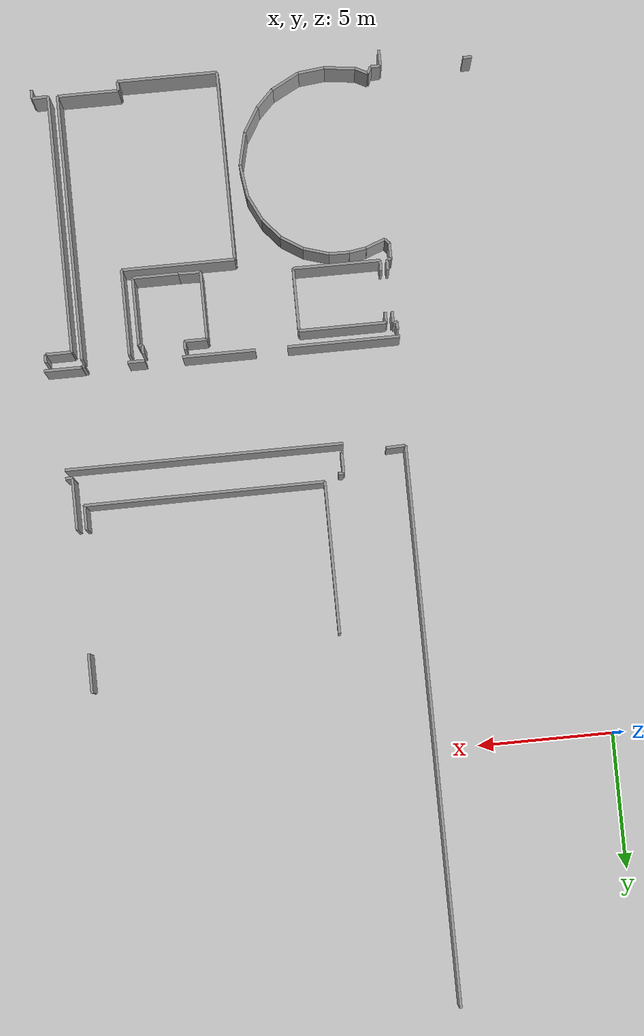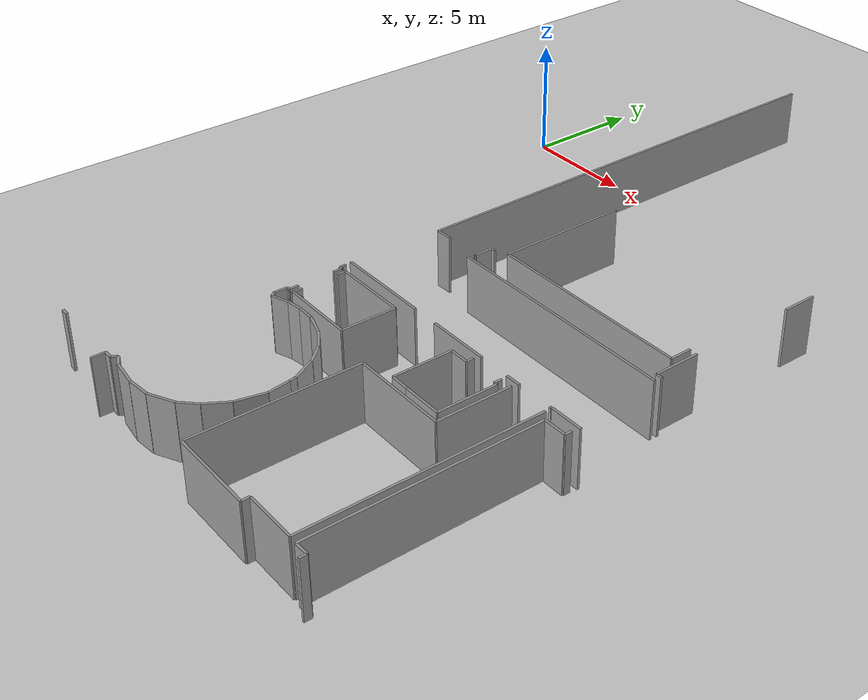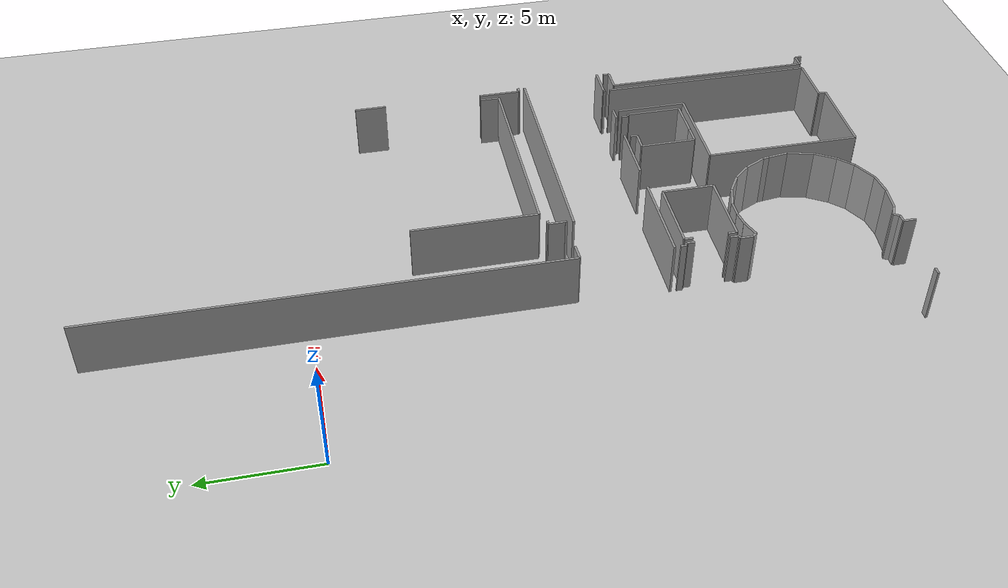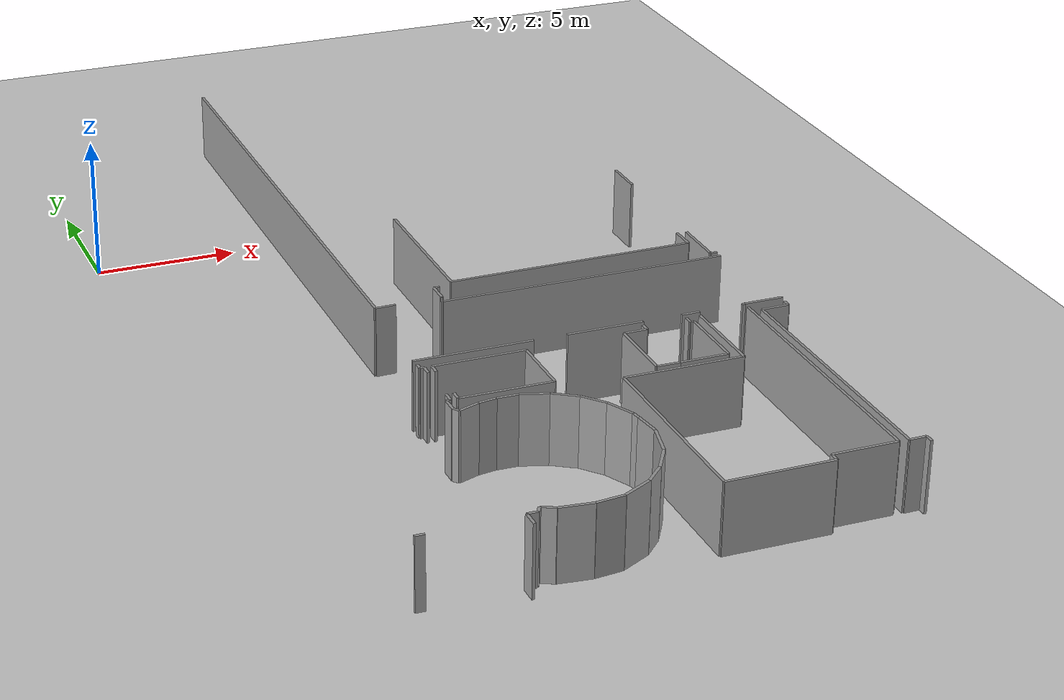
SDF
<sdf version="1.6">
 <world name="default">
  <model name="ground_plane">
   <static>1</static>
   <link name="link">
    <collision name="collision">
     <geometry><plane><normal>0 0 1</normal><size>100 100</size></plane></geometry>
     <surface><friction><ode><mu>100</mu><mu2>50</mu2></ode></friction></surface>
    </collision>
    <visual name="visual">
     <cast_shadows>0</cast_shadows>
     <geometry><plane><normal>0 0 1</normal><size>100 100</size></plane></geometry>
     <material>
      <script><uri>file://media/materials/scripts/gazebo.material</uri><name>Gazebo/Grey</name></script>
     </material>
    </visual>
   </link>
  </model>
  <model name="50045367">
   <static>1</static>
   <link name="Wall_126">
    <collision name="Wall_126_Collision">
     <geometry><box><size>20.4384115046 0.1 2.5</size></box></geometry>
     <pose>10.2192057523 0 1.25 0 0 0</pose>
    </collision>
    <visual name="Wall_126_Visual">
     <pose>10.2192057523 0 1.25 0 0 0</pose>
     <geometry><box><size>20.4384115046 0.1 2.5</size></box></geometry>
     <material>
      <script><uri>file://media/materials/scripts/gazebo.material</uri><name>Gazebo/Grey</name></script>
      <ambient>1 1 1 1</ambient>
     </material>
    </visual>
    <pose>59.8363737995 -36.7291274963 0 0 0 1.57079632679</pose>
   </link>
   <link name="Wall_131">
    <collision name="Wall_131_Collision">
     <geometry><box><size>0.195385944408 0.1 2.5</size></box></geometry>
     <pose>0.0976929722039 0 1.25 0 0 0</pose>
    </collision>
    <visual name="Wall_131_Visual">
     <pose>0.0976929722039 0 1.25 0 0 0</pose>
     <geometry><box><size>0.195385944408 0.1 2.5</size></box></geometry>
     <material>
      <script><uri>file://media/materials/scripts/gazebo.material</uri><name>Gazebo/Grey</name></script>
      <ambient>1 1 1 1</ambient>
     </material>
    </visual>
    <pose>62.3714365567 -35.9397073022 0 0 0 3.14159265359</pose>
   </link>
   <link name="Wall_132">
    <collision name="Wall_132_Collision">
     <geometry><box><size>0.768966919051 0.1 2.5</size></box></geometry>
     <pose>0.384483459525 0 1.25 0 0 0</pose>
    </collision>
    <visual name="Wall_132_Visual">
     <pose>0.384483459525 0 1.25 0 0 0</pose>
     <geometry><box><size>0.768966919051 0.1 2.5</size></box></geometry>
     <material>
      <script><uri>file://media/materials/scripts/gazebo.material</uri><name>Gazebo/Grey</name></script>
      <ambient>1 1 1 1</ambient>
     </material>
    </visual>
    <pose>62.1760506123 -35.9397073022 0 0 0 -1.57079632679</pose>
   </link>
   <link name="Wall_133">
    <collision name="Wall_133_Collision">
     <geometry><box><size>0.0572945779765 0.1 2.5</size></box></geometry>
     <pose>0.0286472889883 0 1.25 0 0 0</pose>
    </collision>
    <visual name="Wall_133_Visual">
     <pose>0.0286472889883 0 1.25 0 0 0</pose>
     <geometry><box><size>0.0572945779765 0.1 2.5</size></box></geometry>
     <material>
      <script><uri>file://media/materials/scripts/gazebo.material</uri><name>Gazebo/Grey</name></script>
      <ambient>1 1 1 1</ambient>
     </material>
    </visual>
    <pose>62.1760506123 -36.7086742213 0 0 0 3.14159265359</pose>
   </link>
   <link name="Wall_134">
    <collision name="Wall_134_Collision">
     <geometry><box><size>0.714759899718 0.1 2.5</size></box></geometry>
     <pose>0.357379949859 0 1.25 0 0 0</pose>
    </collision>
    <visual name="Wall_134_Visual">
     <pose>0.357379949859 0 1.25 0 0 0</pose>
     <geometry><box><size>0.714759899718 0.1 2.5</size></box></geometry>
     <material>
      <script><uri>file://media/materials/scripts/gazebo.material</uri><name>Gazebo/Grey</name></script>
      <ambient>1 1 1 1</ambient>
     </material>
    </visual>
    <pose>60.550840998 -36.7086742213 0 0 0 -3.11297315847</pose>
   </link>
   <link name="Wall_260">
    <collision name="Wall_260_Collision">
     <geometry><box><size>5.54830021851 0.1 2.5</size></box></geometry>
     <pose>2.77415010925 0 1.25 0 0 0</pose>
    </collision>
    <visual name="Wall_260_Visual">
     <pose>2.77415010925 0 1.25 0 0 0</pose>
     <geometry><box><size>5.54830021851 0.1 2.5</size></box></geometry>
     <material>
      <script><uri>file://media/materials/scripts/gazebo.material</uri><name>Gazebo/Grey</name></script>
      <ambient>1 1 1 1</ambient>
     </material>
    </visual>
    <pose>62.8842929011 -35.6961735861 0 0 0 1.57079632679</pose>
   </link>
   <link name="Wall_263">
    <collision name="Wall_263_Collision">
     <geometry><box><size>0.887748361197 0.1 2.5</size></box></geometry>
     <pose>0.443874180599 0 1.25 0 0 0</pose>
    </collision>
    <visual name="Wall_263_Visual">
     <pose>0.443874180599 0 1.25 0 0 0</pose>
     <geometry><box><size>0.887748361197 0.1 2.5</size></box></geometry>
     <material>
      <script><uri>file://media/materials/scripts/gazebo.material</uri><name>Gazebo/Grey</name></script>
      <ambient>1 1 1 1</ambient>
     </material>
    </visual>
    <pose>71.6666243203 -34.7795873774 0 0 0 -1.57079632679</pose>
   </link>
   <link name="Wall_264">
    <collision name="Wall_264_Collision">
     <geometry><box><size>8.78237876543 0.1 2.5</size></box></geometry>
     <pose>4.39118938272 0 1.25 0 0 0</pose>
    </collision>
    <visual name="Wall_264_Visual">
     <pose>4.39118938272 0 1.25 0 0 0</pose>
     <geometry><box><size>8.78237876543 0.1 2.5</size></box></geometry>
     <material>
      <script><uri>file://media/materials/scripts/gazebo.material</uri><name>Gazebo/Grey</name></script>
      <ambient>1 1 1 1</ambient>
     </material>
    </visual>
    <pose>71.6666243203 -35.6673357386 0 0 0 -3.13830904444</pose>
   </link>
   <link name="Wall_265">
    <collision name="Wall_265_Collision">
     <geometry><box><size>1.8627724986 0.1 2.5</size></box></geometry>
     <pose>0.931386249301 0 1.25 0 0 0</pose>
    </collision>
    <visual name="Wall_265_Visual">
     <pose>0.931386249301 0 1.25 0 0 0</pose>
     <geometry><box><size>1.8627724986 0.1 2.5</size></box></geometry>
     <material>
      <script><uri>file://media/materials/scripts/gazebo.material</uri><name>Gazebo/Grey</name></script>
      <ambient>1 1 1 1</ambient>
     </material>
    </visual>
    <pose>72.0100106713 -36.6696732558 0 0 0 1.57079632679</pose>
   </link>
   <link name="Wall_266">
    <collision name="Wall_266_Collision">
     <geometry><box><size>1.42766400732 0.1 2.5</size></box></geometry>
     <pose>0.713832003659 0 1.25 0 0 0</pose>
    </collision>
    <visual name="Wall_266_Visual">
     <pose>0.713832003659 0 1.25 0 0 0</pose>
     <geometry><box><size>1.42766400732 0.1 2.5</size></box></geometry>
     <material>
      <script><uri>file://media/materials/scripts/gazebo.material</uri><name>Gazebo/Grey</name></script>
      <ambient>1 1 1 1</ambient>
     </material>
    </visual>
    <pose>72.0100106713 -30.29638193 0 0 0 1.57079632679</pose>
   </link>
   <link name="Wall_299">
    <collision name="Wall_299_Collision">
     <geometry><box><size>0.252680522384 0.1 2.5</size></box></geometry>
     <pose>0.126340261192 0 1.25 0 0 0</pose>
    </collision>
    <visual name="Wall_299_Visual">
     <pose>0.126340261192 0 1.25 0 0 0</pose>
     <geometry><box><size>0.252680522384 0.1 2.5</size></box></geometry>
     <material>
      <script><uri>file://media/materials/scripts/gazebo.material</uri><name>Gazebo/Grey</name></script>
      <ambient>1 1 1 1</ambient>
     </material>
    </visual>
    <pose>72.2604044921 -36.7107068449 0 0 0 3.14159265359</pose>
   </link>
   <link name="Wall_300">
    <collision name="Wall_300_Collision">
     <geometry><box><size>0.0410972558558 0.1 2.5</size></box></geometry>
     <pose>0.0205486279279 0 1.25 0 0 0</pose>
    </collision>
    <visual name="Wall_300_Visual">
     <pose>0.0205486279279 0 1.25 0 0 0</pose>
     <geometry><box><size>0.0410972558558 0.1 2.5</size></box></geometry>
     <material>
      <script><uri>file://media/materials/scripts/gazebo.material</uri><name>Gazebo/Grey</name></script>
      <ambient>1 1 1 1</ambient>
     </material>
    </visual>
    <pose>72.0077239697 -36.7107068449 0 0 0 1.51512635379</pose>
   </link>
   <link name="Wall_376">
    <collision name="Wall_376_Collision">
     <geometry><box><size>0.260429899893 0.1 2.5</size></box></geometry>
     <pose>0.130214949947 0 1.25 0 0 0</pose>
    </collision>
    <visual name="Wall_376_Visual">
     <pose>0.130214949947 0 1.25 0 0 0</pose>
     <geometry><box><size>0.260429899893 0.1 2.5</size></box></geometry>
     <material>
      <script><uri>file://media/materials/scripts/gazebo.material</uri><name>Gazebo/Grey</name></script>
      <ambient>1 1 1 1</ambient>
     </material>
    </visual>
    <pose>59.7103511357 -40.9915392042 0 0 0 -1.57079632679</pose>
   </link>
   <link name="Wall_377">
    <collision name="Wall_377_Collision">
     <geometry><box><size>0.138853600285 0.1 2.5</size></box></geometry>
     <pose>0.0694268001423 0 1.25 0 0 0</pose>
    </collision>
    <visual name="Wall_377_Visual">
     <pose>0.0694268001423 0 1.25 0 0 0</pose>
     <geometry><box><size>0.138853600285 0.1 2.5</size></box></geometry>
     <material>
      <script><uri>file://media/materials/scripts/gazebo.material</uri><name>Gazebo/Grey</name></script>
      <ambient>1 1 1 1</ambient>
     </material>
    </visual>
    <pose>59.7103511357 -41.2519691041 0 0 0 0.0</pose>
   </link>
   <link name="Wall_378">
    <collision name="Wall_378_Collision">
     <geometry><box><size>0.391661161644 0.1 2.5</size></box></geometry>
     <pose>0.195830580822 0 1.25 0 0 0</pose>
    </collision>
    <visual name="Wall_378_Visual">
     <pose>0.195830580822 0 1.25 0 0 0</pose>
     <geometry><box><size>0.391661161644 0.1 2.5</size></box></geometry>
     <material>
      <script><uri>file://media/materials/scripts/gazebo.material</uri><name>Gazebo/Grey</name></script>
      <ambient>1 1 1 1</ambient>
     </material>
    </visual>
    <pose>59.849204736 -41.2519691041 0 0 0 -1.57079632679</pose>
   </link>
   <link name="Wall_379">
    <collision name="Wall_379_Collision">
     <geometry><box><size>0.382006199502 0.1 2.5</size></box></geometry>
     <pose>0.191003099751 0 1.25 0 0 0</pose>
    </collision>
    <visual name="Wall_379_Visual">
     <pose>0.191003099751 0 1.25 0 0 0</pose>
     <geometry><box><size>0.382006199502 0.1 2.5</size></box></geometry>
     <material>
      <script><uri>file://media/materials/scripts/gazebo.material</uri><name>Gazebo/Grey</name></script>
      <ambient>1 1 1 1</ambient>
     </material>
    </visual>
    <pose>59.849204736 -43.1851211952 0 0 0 -1.57079632679</pose>
   </link>
   <link name="Wall_380">
    <collision name="Wall_380_Collision">
     <geometry><box><size>0.141394379796 0.1 2.5</size></box></geometry>
     <pose>0.0706971898979 0 1.25 0 0 0</pose>
    </collision>
    <visual name="Wall_380_Visual">
     <pose>0.0706971898979 0 1.25 0 0 0</pose>
     <geometry><box><size>0.141394379796 0.1 2.5</size></box></geometry>
     <material>
      <script><uri>file://media/materials/scripts/gazebo.material</uri><name>Gazebo/Grey</name></script>
      <ambient>1 1 1 1</ambient>
     </material>
    </visual>
    <pose>59.849204736 -43.5671273947 0 0 0 3.14159265359</pose>
   </link>
   <link name="Wall_381">
    <collision name="Wall_381_Collision">
     <geometry><box><size>0.571294273083 0.1 2.5</size></box></geometry>
     <pose>0.285647136541 0 1.25 0 0 0</pose>
    </collision>
    <visual name="Wall_381_Visual">
     <pose>0.285647136541 0 1.25 0 0 0</pose>
     <geometry><box><size>0.571294273083 0.1 2.5</size></box></geometry>
     <material>
      <script><uri>file://media/materials/scripts/gazebo.material</uri><name>Gazebo/Grey</name></script>
      <ambient>1 1 1 1</ambient>
     </material>
    </visual>
    <pose>59.7078103562 -43.5671273947 0 0 0 -1.57079632679</pose>
   </link>
   <link name="Wall_382">
    <collision name="Wall_382_Collision">
     <geometry><box><size>0.230533495433 0.1 2.5</size></box></geometry>
     <pose>0.115266747716 0 1.25 0 0 0</pose>
    </collision>
    <visual name="Wall_382_Visual">
     <pose>0.115266747716 0 1.25 0 0 0</pose>
     <geometry><box><size>0.230533495433 0.1 2.5</size></box></geometry>
     <material>
      <script><uri>file://media/materials/scripts/gazebo.material</uri><name>Gazebo/Grey</name></script>
      <ambient>1 1 1 1</ambient>
     </material>
    </visual>
    <pose>59.7078103562 -44.1384216678 0 0 0 -0.875140813856</pose>
   </link>
   <link name="Wall_383">
    <collision name="Wall_383_Collision">
     <geometry><box><size>0.759257925694 0.1 2.5</size></box></geometry>
     <pose>0.379628962847 0 1.25 0 0 0</pose>
    </collision>
    <visual name="Wall_383_Visual">
     <pose>0.379628962847 0 1.25 0 0 0</pose>
     <geometry><box><size>0.759257925694 0.1 2.5</size></box></geometry>
     <material>
      <script><uri>file://media/materials/scripts/gazebo.material</uri><name>Gazebo/Grey</name></script>
      <ambient>1 1 1 1</ambient>
     </material>
    </visual>
    <pose>59.8555566848 -44.3153869607 0 0 0 0.348156314008</pose>
   </link>
   <link name="Wall_384">
    <collision name="Wall_384_Collision">
     <geometry><box><size>0.632427019998 0.1 2.5</size></box></geometry>
     <pose>0.316213509999 0 1.25 0 0 0</pose>
    </collision>
    <visual name="Wall_384_Visual">
     <pose>0.316213509999 0 1.25 0 0 0</pose>
     <geometry><box><size>0.632427019998 0.1 2.5</size></box></geometry>
     <material>
      <script><uri>file://media/materials/scripts/gazebo.material</uri><name>Gazebo/Grey</name></script>
      <ambient>1 1 1 1</ambient>
     </material>
    </visual>
    <pose>60.5692616495 -44.0563544896 0 0 0 0.150419575531</pose>
   </link>
   <link name="Wall_385">
    <collision name="Wall_385_Collision">
     <geometry><box><size>0.732870926682 0.1 2.5</size></box></geometry>
     <pose>0.366435463341 0 1.25 0 0 0</pose>
    </collision>
    <visual name="Wall_385_Visual">
     <pose>0.366435463341 0 1.25 0 0 0</pose>
     <geometry><box><size>0.732870926682 0.1 2.5</size></box></geometry>
     <material>
      <script><uri>file://media/materials/scripts/gazebo.material</uri><name>Gazebo/Grey</name></script>
      <ambient>1 1 1 1</ambient>
     </material>
    </visual>
    <pose>61.1945474872 -43.9615834138 0 0 0 -0.0173352952006</pose>
   </link>
   <link name="Wall_386">
    <collision name="Wall_386_Collision">
     <geometry><box><size>0.964850213878 0.1 2.5</size></box></geometry>
     <pose>0.482425106939 0 1.25 0 0 0</pose>
    </collision>
    <visual name="Wall_386_Visual">
     <pose>0.482425106939 0 1.25 0 0 0</pose>
     <geometry><box><size>0.964850213878 0.1 2.5</size></box></geometry>
     <material>
      <script><uri>file://media/materials/scripts/gazebo.material</uri><name>Gazebo/Grey</name></script>
      <ambient>1 1 1 1</ambient>
     </material>
    </visual>
    <pose>61.9273082982 -43.9742873113 0 0 0 -0.29897326893</pose>
   </link>
   <link name="Wall_387">
    <collision name="Wall_387_Collision">
     <geometry><box><size>0.925259919196 0.1 2.5</size></box></geometry>
     <pose>0.462629959598 0 1.25 0 0 0</pose>
    </collision>
    <visual name="Wall_387_Visual">
     <pose>0.462629959598 0 1.25 0 0 0</pose>
     <geometry><box><size>0.925259919196 0.1 2.5</size></box></geometry>
     <material>
      <script><uri>file://media/materials/scripts/gazebo.material</uri><name>Gazebo/Grey</name></script>
      <ambient>1 1 1 1</ambient>
     </material>
    </visual>
    <pose>62.8493571828 -44.2584734997 0 0 0 -0.56149553778</pose>
   </link>
   <link name="Wall_388">
    <collision name="Wall_388_Collision">
     <geometry><box><size>0.913283336655 0.1 2.5</size></box></geometry>
     <pose>0.456641668327 0 1.25 0 0 0</pose>
    </collision>
    <visual name="Wall_388_Visual">
     <pose>0.456641668327 0 1.25 0 0 0</pose>
     <geometry><box><size>0.913283336655 0.1 2.5</size></box></geometry>
     <material>
      <script><uri>file://media/materials/scripts/gazebo.material</uri><name>Gazebo/Grey</name></script>
      <ambient>1 1 1 1</ambient>
     </material>
    </visual>
    <pose>63.6325524671 -44.7511306469 0 0 0 -0.853811391816</pose>
   </link>
   <link name="Wall_389">
    <collision name="Wall_389_Collision">
     <geometry><box><size>1.00838815135 0.1 2.5</size></box></geometry>
     <pose>0.504194075677 0 1.25 0 0 0</pose>
    </collision>
    <visual name="Wall_389_Visual">
     <pose>0.504194075677 0 1.25 0 0 0</pose>
     <geometry><box><size>1.00838815135 0.1 2.5</size></box></geometry>
     <material>
      <script><uri>file://media/materials/scripts/gazebo.material</uri><name>Gazebo/Grey</name></script>
      <ambient>1 1 1 1</ambient>
     </material>
    </visual>
    <pose>64.2326845876 -45.4395548554 0 0 0 -1.11007845193</pose>
   </link>
   <link name="Wall_390">
    <collision name="Wall_390_Collision">
     <geometry><box><size>0.288649018977 0.1 2.5</size></box></geometry>
     <pose>0.144324509489 0 1.25 0 0 0</pose>
    </collision>
    <visual name="Wall_390_Visual">
     <pose>0.144324509489 0 1.25 0 0 0</pose>
     <geometry><box><size>0.288649018977 0.1 2.5</size></box></geometry>
     <material>
      <script><uri>file://media/materials/scripts/gazebo.material</uri><name>Gazebo/Grey</name></script>
      <ambient>1 1 1 1</ambient>
     </material>
    </visual>
    <pose>64.6810051324 -46.3428019716 0 0 0 -1.39472189022</pose>
   </link>
   <link name="Wall_391">
    <collision name="Wall_391_Collision">
     <geometry><box><size>0.917343947482 0.1 2.5</size></box></geometry>
     <pose>0.458671973741 0 1.25 0 0 0</pose>
    </collision>
    <visual name="Wall_391_Visual">
     <pose>0.458671973741 0 1.25 0 0 0</pose>
     <geometry><box><size>0.917343947482 0.1 2.5</size></box></geometry>
     <material>
      <script><uri>file://media/materials/scripts/gazebo.material</uri><name>Gazebo/Grey</name></script>
      <ambient>1 1 1 1</ambient>
     </material>
    </visual>
    <pose>64.7315666446 -46.62698816 0 0 0 -1.4375950458</pose>
   </link>
   <link name="Wall_392">
    <collision name="Wall_392_Collision">
     <geometry><box><size>1.20171081766 0.1 2.5</size></box></geometry>
     <pose>0.600855408831 0 1.25 0 0 0</pose>
    </collision>
    <visual name="Wall_392_Visual">
     <pose>0.600855408831 0 1.25 0 0 0</pose>
     <geometry><box><size>1.20171081766 0.1 2.5</size></box></geometry>
     <material>
      <script><uri>file://media/materials/scripts/gazebo.material</uri><name>Gazebo/Grey</name></script>
      <ambient>1 1 1 1</ambient>
     </material>
    </visual>
    <pose>64.8533970222 -47.536206108 0 0 0 -1.80551893928</pose>
   </link>
   <link name="Wall_393">
    <collision name="Wall_393_Collision">
     <geometry><box><size>1.04365437261 0.1 2.5</size></box></geometry>
     <pose>0.521827186304 0 1.25 0 0 0</pose>
    </collision>
    <visual name="Wall_393_Visual">
     <pose>0.521827186304 0 1.25 0 0 0</pose>
     <geometry><box><size>1.04365437261 0.1 2.5</size></box></geometry>
     <material>
      <script><uri>file://media/materials/scripts/gazebo.material</uri><name>Gazebo/Grey</name></script>
      <ambient>1 1 1 1</ambient>
     </material>
    </visual>
    <pose>64.573911276 -48.7049646832 0 0 0 -2.12165386133</pose>
   </link>
   <link name="Wall_394">
    <collision name="Wall_394_Collision">
     <geometry><box><size>0.844403138263 0.1 2.5</size></box></geometry>
     <pose>0.422201569132 0 1.25 0 0 0</pose>
    </collision>
    <visual name="Wall_394_Visual">
     <pose>0.422201569132 0 1.25 0 0 0</pose>
     <geometry><box><size>0.844403138263 0.1 2.5</size></box></geometry>
     <material>
      <script><uri>file://media/materials/scripts/gazebo.material</uri><name>Gazebo/Grey</name></script>
      <ambient>1 1 1 1</ambient>
     </material>
    </visual>
    <pose>64.0276436811 -49.5942375121 0 0 0 -2.35619449019</pose>
   </link>
   <link name="Wall_395">
    <collision name="Wall_395_Collision">
     <geometry><box><size>1.13071825042 0.1 2.5</size></box></geometry>
     <pose>0.565359125211 0 1.25 0 0 0</pose>
    </collision>
    <visual name="Wall_395_Visual">
     <pose>0.565359125211 0 1.25 0 0 0</pose>
     <geometry><box><size>1.13071825042 0.1 2.5</size></box></geometry>
     <material>
      <script><uri>file://media/materials/scripts/gazebo.material</uri><name>Gazebo/Grey</name></script>
      <ambient>1 1 1 1</ambient>
     </material>
    </visual>
    <pose>63.430560496 -50.1913206972 0 0 0 -2.66287080959</pose>
   </link>
   <link name="Wall_396">
    <collision name="Wall_396_Collision">
     <geometry><box><size>0.970830488061 0.1 2.5</size></box></geometry>
     <pose>0.48541524403 0 1.25 0 0 0</pose>
    </collision>
    <visual name="Wall_396_Visual">
     <pose>0.48541524403 0 1.25 0 0 0</pose>
     <geometry><box><size>0.970830488061 0.1 2.5</size></box></geometry>
     <material>
      <script><uri>file://media/materials/scripts/gazebo.material</uri><name>Gazebo/Grey</name></script>
      <ambient>1 1 1 1</ambient>
     </material>
    </visual>
    <pose>62.4269525891 -50.712180497 0 0 0 -3.03671571486</pose>
   </link>
   <link name="Wall_397">
    <collision name="Wall_397_Collision">
     <geometry><box><size>1.13776151901 0.1 2.5</size></box></geometry>
     <pose>0.568880759504 0 1.25 0 0 0</pose>
    </collision>
    <visual name="Wall_397_Visual">
     <pose>0.568880759504 0 1.25 0 0 0</pose>
     <geometry><box><size>1.13776151901 0.1 2.5</size></box></geometry>
     <material>
      <script><uri>file://media/materials/scripts/gazebo.material</uri><name>Gazebo/Grey</name></script>
      <ambient>1 1 1 1</ambient>
     </material>
    </visual>
    <pose>61.4614563748 -50.8138116774 0 0 0 3.02970238742</pose>
   </link>
   <link name="Wall_398">
    <collision name="Wall_398_Collision">
     <geometry><box><size>0.499991581233 0.1 2.5</size></box></geometry>
     <pose>0.249995790616 0 1.25 0 0 0</pose>
    </collision>
    <visual name="Wall_398_Visual">
     <pose>0.249995790616 0 1.25 0 0 0</pose>
     <geometry><box><size>0.499991581233 0.1 2.5</size></box></geometry>
     <material>
      <script><uri>file://media/materials/scripts/gazebo.material</uri><name>Gazebo/Grey</name></script>
      <ambient>1 1 1 1</ambient>
     </material>
    </visual>
    <pose>60.3308094924 -50.6867727019 0 0 0 2.66658189732</pose>
   </link>
   <link name="Wall_399">
    <collision name="Wall_399_Collision">
     <geometry><box><size>0.268637453986 0.1 2.5</size></box></geometry>
     <pose>0.134318726993 0 1.25 0 0 0</pose>
    </collision>
    <visual name="Wall_399_Visual">
     <pose>0.134318726993 0 1.25 0 0 0</pose>
     <geometry><box><size>0.268637453986 0.1 2.5</size></box></geometry>
     <material>
      <script><uri>file://media/materials/scripts/gazebo.material</uri><name>Gazebo/Grey</name></script>
      <ambient>1 1 1 1</ambient>
     </material>
    </visual>
    <pose>59.8861730779 -50.4581025459 0 0 0 -2.08225840645</pose>
   </link>
   <link name="Wall_400">
    <collision name="Wall_400_Collision">
     <geometry><box><size>0.353422430002 0.1 2.5</size></box></geometry>
     <pose>0.176711215001 0 1.25 0 0 0</pose>
    </collision>
    <visual name="Wall_400_Visual">
     <pose>0.176711215001 0 1.25 0 0 0</pose>
     <geometry><box><size>0.353422430002 0.1 2.5</size></box></geometry>
     <material>
      <script><uri>file://media/materials/scripts/gazebo.material</uri><name>Gazebo/Grey</name></script>
      <ambient>1 1 1 1</ambient>
     </material>
    </visual>
    <pose>59.7546877382 -50.6923624168 0 0 0 3.14159265359</pose>
   </link>
   <link name="Wall_401">
    <collision name="Wall_401_Collision">
     <geometry><box><size>0.577011026983 0.1 2.5</size></box></geometry>
     <pose>0.288505513492 0 1.25 0 0 0</pose>
    </collision>
    <visual name="Wall_401_Visual">
     <pose>0.288505513492 0 1.25 0 0 0</pose>
     <geometry><box><size>0.577011026983 0.1 2.5</size></box></geometry>
     <material>
      <script><uri>file://media/materials/scripts/gazebo.material</uri><name>Gazebo/Grey</name></script>
      <ambient>1 1 1 1</ambient>
     </material>
    </visual>
    <pose>59.4012653082 -50.6923624168 0 0 0 -1.57079632679</pose>
   </link>
   <link name="Wall_403">
    <collision name="Wall_403_Collision">
     <geometry><box><size>0.320178545699 0.1 2.5</size></box></geometry>
     <pose>0.160089272849 0 1.25 0 0 0</pose>
    </collision>
    <visual name="Wall_403_Visual">
     <pose>0.160089272849 0 1.25 0 0 0</pose>
     <geometry><box><size>0.320178545699 0.1 2.5</size></box></geometry>
     <material>
      <script><uri>file://media/materials/scripts/gazebo.material</uri><name>Gazebo/Grey</name></script>
      <ambient>1 1 1 1</ambient>
     </material>
    </visual>
    <pose>56.3590629605 -50.7060826261 0 0 0 3.1257209706</pose>
   </link>
   <link name="Wall_404">
    <collision name="Wall_404_Collision">
     <geometry><box><size>0.375527211749 0.1 2.5</size></box></geometry>
     <pose>0.187763605874 0 1.25 0 0 0</pose>
    </collision>
    <visual name="Wall_404_Visual">
     <pose>0.187763605874 0 1.25 0 0 0</pose>
     <geometry><box><size>0.375527211749 0.1 2.5</size></box></geometry>
     <material>
      <script><uri>file://media/materials/scripts/gazebo.material</uri><name>Gazebo/Grey</name></script>
      <ambient>1 1 1 1</ambient>
     </material>
    </visual>
    <pose>60.1016311804 -43.5587428223 0 0 0 1.57079632679</pose>
   </link>
   <link name="Wall_405">
    <collision name="Wall_405_Collision">
     <geometry><box><size>0.377305757406 0.1 2.5</size></box></geometry>
     <pose>0.188652878703 0 1.25 0 0 0</pose>
    </collision>
    <visual name="Wall_405_Visual">
     <pose>0.188652878703 0 1.25 0 0 0</pose>
     <geometry><box><size>0.377305757406 0.1 2.5</size></box></geometry>
     <material>
      <script><uri>file://media/materials/scripts/gazebo.material</uri><name>Gazebo/Grey</name></script>
      <ambient>1 1 1 1</ambient>
     </material>
    </visual>
    <pose>60.1016311804 -41.6469332791 0 0 0 1.57079632679</pose>
   </link>
   <link name="Wall_406">
    <collision name="Wall_406_Collision">
     <geometry><box><size>3.18994867625 0.1 2.5</size></box></geometry>
     <pose>1.59497433813 0 1.25 0 0 0</pose>
    </collision>
    <visual name="Wall_406_Visual">
     <pose>1.59497433813 0 1.25 0 0 0</pose>
     <geometry><box><size>3.18994867625 0.1 2.5</size></box></geometry>
     <material>
      <script><uri>file://media/materials/scripts/gazebo.material</uri><name>Gazebo/Grey</name></script>
      <ambient>1 1 1 1</ambient>
     </material>
    </visual>
    <pose>60.1016311804 -41.2696275217 0 0 0 0.0</pose>
   </link>
   <link name="Wall_407">
    <collision name="Wall_407_Collision">
     <geometry><box><size>2.3004217694 0.1 2.5</size></box></geometry>
     <pose>1.1502108847 0 1.25 0 0 0</pose>
    </collision>
    <visual name="Wall_407_Visual">
     <pose>1.1502108847 0 1.25 0 0 0</pose>
     <geometry><box><size>2.3004217694 0.1 2.5</size></box></geometry>
     <material>
      <script><uri>file://media/materials/scripts/gazebo.material</uri><name>Gazebo/Grey</name></script>
      <ambient>1 1 1 1</ambient>
     </material>
    </visual>
    <pose>63.2915798567 -41.2696275217 0 0 0 -1.57079632679</pose>
   </link>
   <link name="Wall_408">
    <collision name="Wall_408_Collision">
     <geometry><box><size>3.18996871354 0.1 2.5</size></box></geometry>
     <pose>1.59498435677 0 1.25 0 0 0</pose>
    </collision>
    <visual name="Wall_408_Visual">
     <pose>1.59498435677 0 1.25 0 0 0</pose>
     <geometry><box><size>3.18996871354 0.1 2.5</size></box></geometry>
     <material>
      <script><uri>file://media/materials/scripts/gazebo.material</uri><name>Gazebo/Grey</name></script>
      <ambient>1 1 1 1</ambient>
     </material>
    </visual>
    <pose>63.2915798567 -43.5700492911 0 0 0 3.13804826381</pose>
   </link>
   <link name="Wall_409">
    <collision name="Wall_409_Collision">
     <geometry><box><size>2.4781492962 0.1 2.5</size></box></geometry>
     <pose>1.2390746481 0 1.25 0 0 0</pose>
    </collision>
    <visual name="Wall_409_Visual">
     <pose>1.2390746481 0 1.25 0 0 0</pose>
     <geometry><box><size>2.4781492962 0.1 2.5</size></box></geometry>
     <material>
      <script><uri>file://media/materials/scripts/gazebo.material</uri><name>Gazebo/Grey</name></script>
      <ambient>1 1 1 1</ambient>
     </material>
    </visual>
    <pose>66.6639565019 -43.7665785863 0 0 0 1.57079632679</pose>
   </link>
   <link name="Wall_410">
    <collision name="Wall_410_Collision">
     <geometry><box><size>0.817622846689 0.1 2.5</size></box></geometry>
     <pose>0.408811423345 0 1.25 0 0 0</pose>
    </collision>
    <visual name="Wall_410_Visual">
     <pose>0.408811423345 0 1.25 0 0 0</pose>
     <geometry><box><size>0.817622846689 0.1 2.5</size></box></geometry>
     <material>
      <script><uri>file://media/materials/scripts/gazebo.material</uri><name>Gazebo/Grey</name></script>
      <ambient>1 1 1 1</ambient>
     </material>
    </visual>
    <pose>66.6639565019 -41.2884292901 0 0 0 0.0</pose>
   </link>
   <link name="Wall_411">
    <collision name="Wall_411_Collision">
     <geometry><box><size>0.304639463387 0.1 2.5</size></box></geometry>
     <pose>0.152319731694 0 1.25 0 0 0</pose>
    </collision>
    <visual name="Wall_411_Visual">
     <pose>0.152319731694 0 1.25 0 0 0</pose>
     <geometry><box><size>0.304639463387 0.1 2.5</size></box></geometry>
     <material>
      <script><uri>file://media/materials/scripts/gazebo.material</uri><name>Gazebo/Grey</name></script>
      <ambient>1 1 1 1</ambient>
     </material>
    </visual>
    <pose>67.4815793485 -41.2884292901 0 0 0 1.57079632679</pose>
   </link>
   <link name="Wall_412">
    <collision name="Wall_412_Collision">
     <geometry><box><size>0.30972102241 0.1 2.5</size></box></geometry>
     <pose>0.154860511205 0 1.25 0 0 0</pose>
    </collision>
    <visual name="Wall_412_Visual">
     <pose>0.154860511205 0 1.25 0 0 0</pose>
     <geometry><box><size>0.30972102241 0.1 2.5</size></box></geometry>
     <material>
      <script><uri>file://media/materials/scripts/gazebo.material</uri><name>Gazebo/Grey</name></script>
      <ambient>1 1 1 1</ambient>
     </material>
    </visual>
    <pose>69.0245947457 -40.9837898267 0 0 0 -1.57079632679</pose>
   </link>
   <link name="Wall_413">
    <collision name="Wall_413_Collision">
     <geometry><box><size>0.128944560191 0.1 2.5</size></box></geometry>
     <pose>0.0644722800955 0 1.25 0 0 0</pose>
    </collision>
    <visual name="Wall_413_Visual">
     <pose>0.0644722800955 0 1.25 0 0 0</pose>
     <geometry><box><size>0.128944560191 0.1 2.5</size></box></geometry>
     <material>
      <script><uri>file://media/materials/scripts/gazebo.material</uri><name>Gazebo/Grey</name></script>
      <ambient>1 1 1 1</ambient>
     </material>
    </visual>
    <pose>69.0245947457 -41.2935108491 0 0 0 0.0</pose>
   </link>
   <link name="Wall_414">
    <collision name="Wall_414_Collision">
     <geometry><box><size>2.48767721937 0.1 2.5</size></box></geometry>
     <pose>1.24383860969 0 1.25 0 0 0</pose>
    </collision>
    <visual name="Wall_414_Visual">
     <pose>1.24383860969 0 1.25 0 0 0</pose>
     <geometry><box><size>2.48767721937 0.1 2.5</size></box></geometry>
     <material>
      <script><uri>file://media/materials/scripts/gazebo.material</uri><name>Gazebo/Grey</name></script>
      <ambient>1 1 1 1</ambient>
     </material>
    </visual>
    <pose>69.1535393059 -41.2935108491 0 0 0 -1.57079632679</pose>
   </link>
   <link name="Wall_415">
    <collision name="Wall_415_Collision">
     <geometry><box><size>1.67742263326 0.1 2.5</size></box></geometry>
     <pose>0.838711316632 0 1.25 0 0 0</pose>
    </collision>
    <visual name="Wall_415_Visual">
     <pose>0.838711316632 0 1.25 0 0 0</pose>
     <geometry><box><size>1.67742263326 0.1 2.5</size></box></geometry>
     <material>
      <script><uri>file://media/materials/scripts/gazebo.material</uri><name>Gazebo/Grey</name></script>
      <ambient>1 1 1 1</ambient>
     </material>
    </visual>
    <pose>69.1535393059 -43.7811880685 0 0 0 3.14159265359</pose>
   </link>
   <link name="Wall_416">
    <collision name="Wall_416_Collision">
     <geometry><box><size>0.812291560898 0.1 2.5</size></box></geometry>
     <pose>0.406145780449 0 1.25 0 0 0</pose>
    </collision>
    <visual name="Wall_416_Visual">
     <pose>0.406145780449 0 1.25 0 0 0</pose>
     <geometry><box><size>0.812291560898 0.1 2.5</size></box></geometry>
     <material>
      <script><uri>file://media/materials/scripts/gazebo.material</uri><name>Gazebo/Grey</name></script>
      <ambient>1 1 1 1</ambient>
     </material>
    </visual>
    <pose>67.4761166726 -43.7811880685 0 0 0 3.12360616863</pose>
   </link>
   <link name="Wall_417">
    <collision name="Wall_417_Collision">
     <geometry><box><size>6.92171858326 0.1 2.5</size></box></geometry>
     <pose>3.46085929163 0 1.25 0 0 0</pose>
    </collision>
    <visual name="Wall_417_Visual">
     <pose>3.46085929163 0 1.25 0 0 0</pose>
     <geometry><box><size>6.92171858326 0.1 2.5</size></box></geometry>
     <material>
      <script><uri>file://media/materials/scripts/gazebo.material</uri><name>Gazebo/Grey</name></script>
      <ambient>1 1 1 1</ambient>
     </material>
    </visual>
    <pose>65.3821332385 -51.02926978 0 0 0 1.57079632679</pose>
   </link>
   <link name="Wall_418">
    <collision name="Wall_418_Collision">
     <geometry><box><size>4.14299507089 0.1 2.5</size></box></geometry>
     <pose>2.07149753544 0 1.25 0 0 0</pose>
    </collision>
    <visual name="Wall_418_Visual">
     <pose>2.07149753544 0 1.25 0 0 0</pose>
     <geometry><box><size>4.14299507089 0.1 2.5</size></box></geometry>
     <material>
      <script><uri>file://media/materials/scripts/gazebo.material</uri><name>Gazebo/Grey</name></script>
      <ambient>1 1 1 1</ambient>
     </material>
    </visual>
    <pose>65.3821332385 -44.1075511967 0 0 0 0.0</pose>
   </link>
   <link name="Wall_419">
    <collision name="Wall_419_Collision">
     <geometry><box><size>3.13341633213 0.1 2.5</size></box></geometry>
     <pose>1.56670816607 0 1.25 0 0 0</pose>
    </collision>
    <visual name="Wall_419_Visual">
     <pose>1.56670816607 0 1.25 0 0 0</pose>
     <geometry><box><size>3.13341633213 0.1 2.5</size></box></geometry>
     <material>
      <script><uri>file://media/materials/scripts/gazebo.material</uri><name>Gazebo/Grey</name></script>
      <ambient>1 1 1 1</ambient>
     </material>
    </visual>
    <pose>69.5251283094 -44.1075511967 0 0 0 1.57079632679</pose>
   </link>
   <link name="Wall_420">
    <collision name="Wall_420_Collision">
     <geometry><box><size>9.72864474821 0.1 2.5</size></box></geometry>
     <pose>4.8643223741 0 1.25 0 0 0</pose>
    </collision>
    <visual name="Wall_420_Visual">
     <pose>4.8643223741 0 1.25 0 0 0</pose>
     <geometry><box><size>9.72864474821 0.1 2.5</size></box></geometry>
     <material>
      <script><uri>file://media/materials/scripts/gazebo.material</uri><name>Gazebo/Grey</name></script>
      <ambient>1 1 1 1</ambient>
     </material>
    </visual>
    <pose>71.2684841709 -40.9741348646 0 0 0 -1.57079632679</pose>
   </link>
   <link name="Wall_421">
    <collision name="Wall_421_Collision">
     <geometry><box><size>2.23715635957 0.1 2.5</size></box></geometry>
     <pose>1.11857817979 0 1.25 0 0 0</pose>
    </collision>
    <visual name="Wall_421_Visual">
     <pose>1.11857817979 0 1.25 0 0 0</pose>
     <geometry><box><size>2.23715635957 0.1 2.5</size></box></geometry>
     <material>
      <script><uri>file://media/materials/scripts/gazebo.material</uri><name>Gazebo/Grey</name></script>
      <ambient>1 1 1 1</ambient>
     </material>
    </visual>
    <pose>71.2684841709 -50.7027796128 0 0 0 3.14159265359</pose>
   </link>
   <link name="Wall_422">
    <collision name="Wall_422_Collision">
     <geometry><box><size>0.334112505717 0.1 2.5</size></box></geometry>
     <pose>0.167056252858 0 1.25 0 0 0</pose>
    </collision>
    <visual name="Wall_422_Visual">
     <pose>0.167056252858 0 1.25 0 0 0</pose>
     <geometry><box><size>0.334112505717 0.1 2.5</size></box></geometry>
     <material>
      <script><uri>file://media/materials/scripts/gazebo.material</uri><name>Gazebo/Grey</name></script>
      <ambient>1 1 1 1</ambient>
     </material>
    </visual>
    <pose>69.0313278114 -50.7027796128 0 0 0 -1.57079632679</pose>
   </link>
   <link name="Wall_423">
    <collision name="Wall_423_Collision">
     <geometry><box><size>3.64920253355 0.1 2.5</size></box></geometry>
     <pose>1.82460126678 0 1.25 0 0 0</pose>
    </collision>
    <visual name="Wall_423_Visual">
     <pose>1.82460126678 0 1.25 0 0 0</pose>
     <geometry><box><size>3.64920253355 0.1 2.5</size></box></geometry>
     <material>
      <script><uri>file://media/materials/scripts/gazebo.material</uri><name>Gazebo/Grey</name></script>
      <ambient>1 1 1 1</ambient>
     </material>
    </visual>
    <pose>69.0313278114 -51.0368921185 0 0 0 3.13950388378</pose>
   </link>
   <link name="Wall_424">
    <collision name="Wall_424_Collision">
     <geometry><box><size>9.43950403984 0.1 2.5</size></box></geometry>
     <pose>4.71975201992 0 1.25 0 0 0</pose>
    </collision>
    <visual name="Wall_424_Visual">
     <pose>4.71975201992 0 1.25 0 0 0</pose>
     <geometry><box><size>9.43950403984 0.1 2.5</size></box></geometry>
     <material>
      <script><uri>file://media/materials/scripts/gazebo.material</uri><name>Gazebo/Grey</name></script>
      <ambient>1 1 1 1</ambient>
     </material>
    </visual>
    <pose>71.6123786778 -50.7281874079 0 0 0 1.57079632679</pose>
   </link>
   <link name="Wall_425">
    <collision name="Wall_425_Collision">
     <geometry><box><size>0.97032369531 0.1 2.5</size></box></geometry>
     <pose>0.485161847655 0 1.25 0 0 0</pose>
    </collision>
    <visual name="Wall_425_Visual">
     <pose>0.485161847655 0 1.25 0 0 0</pose>
     <geometry><box><size>0.97032369531 0.1 2.5</size></box></geometry>
     <material>
      <script><uri>file://media/materials/scripts/gazebo.material</uri><name>Gazebo/Grey</name></script>
      <ambient>1 1 1 1</ambient>
     </material>
    </visual>
    <pose>71.6123786778 -41.2886833681 0 0 0 0.0</pose>
   </link>
   <link name="Wall_426">
    <collision name="Wall_426_Collision">
     <geometry><box><size>0.276944966716 0.1 2.5</size></box></geometry>
     <pose>0.138472483358 0 1.25 0 0 0</pose>
    </collision>
    <visual name="Wall_426_Visual">
     <pose>0.138472483358 0 1.25 0 0 0</pose>
     <geometry><box><size>0.276944966716 0.1 2.5</size></box></geometry>
     <material>
      <script><uri>file://media/materials/scripts/gazebo.material</uri><name>Gazebo/Grey</name></script>
      <ambient>1 1 1 1</ambient>
     </material>
    </visual>
    <pose>72.5827023731 -41.2886833681 0 0 0 1.57079632679</pose>
   </link>
   <link name="Wall_434">
    <collision name="Wall_434_Collision">
     <geometry><box><size>0.299557904365 0.1 2.5</size></box></geometry>
     <pose>0.149778952183 0 1.25 0 0 0</pose>
    </collision>
    <visual name="Wall_434_Visual">
     <pose>0.149778952183 0 1.25 0 0 0</pose>
     <geometry><box><size>0.299557904365 0.1 2.5</size></box></geometry>
     <material>
      <script><uri>file://media/materials/scripts/gazebo.material</uri><name>Gazebo/Grey</name></script>
      <ambient>1 1 1 1</ambient>
     </material>
    </visual>
    <pose>72.1976472382 -51.0166929214 0 0 0 1.57079632679</pose>
   </link>
   <link name="Wall_435">
    <collision name="Wall_435_Collision">
     <geometry><box><size>0.58537290946 0.1 2.5</size></box></geometry>
     <pose>0.29268645473 0 1.25 0 0 0</pose>
    </collision>
    <visual name="Wall_435_Visual">
     <pose>0.29268645473 0 1.25 0 0 0</pose>
     <geometry><box><size>0.58537290946 0.1 2.5</size></box></geometry>
     <material>
      <script><uri>file://media/materials/scripts/gazebo.material</uri><name>Gazebo/Grey</name></script>
      <ambient>1 1 1 1</ambient>
     </material>
    </visual>
    <pose>72.1976472382 -50.717135017 0 0 0 -3.12271059144</pose>
   </link>
   <link name="Wall_470">
    <collision name="Wall_470_Collision">
     <geometry><box><size>10.150922303 0.1 2.5</size></box></geometry>
     <pose>5.07546115148 0 1.25 0 0 0</pose>
    </collision>
    <visual name="Wall_470_Visual">
     <pose>5.07546115148 0 1.25 0 0 0</pose>
     <geometry><box><size>10.150922303 0.1 2.5</size></box></geometry>
     <material>
      <script><uri>file://media/materials/scripts/gazebo.material</uri><name>Gazebo/Grey</name></script>
      <ambient>1 1 1 1</ambient>
     </material>
    </visual>
    <pose>62.0929671223 -37.0203008283 0 0 0 0.0</pose>
   </link>
   <link name="Wall_478">
    <collision name="Wall_478_Collision">
     <geometry><box><size>1.39425275675 0.1 2.5</size></box></geometry>
     <pose>0.697126378373 0 1.25 0 0 0</pose>
    </collision>
    <visual name="Wall_478_Visual">
     <pose>0.697126378373 0 1.25 0 0 0</pose>
     <geometry><box><size>1.39425275675 0.1 2.5</size></box></geometry>
     <material>
      <script><uri>file://media/materials/scripts/gazebo.material</uri><name>Gazebo/Grey</name></script>
      <ambient>1 1 1 1</ambient>
     </material>
    </visual>
    <pose>72.6772193709 -40.6961735861 0 0 0 3.14159265359</pose>
   </link>
   <link name="Wall_479">
    <collision name="Wall_479_Collision">
     <geometry><box><size>0.0265511458916 0.1 2.5</size></box></geometry>
     <pose>0.0132755729458 0 1.25 0 0 0</pose>
    </collision>
    <visual name="Wall_479_Visual">
     <pose>0.0132755729458 0 1.25 0 0 0</pose>
     <geometry><box><size>0.0265511458916 0.1 2.5</size></box></geometry>
     <material>
      <script><uri>file://media/materials/scripts/gazebo.material</uri><name>Gazebo/Grey</name></script>
      <ambient>1 1 1 1</ambient>
     </material>
    </visual>
    <pose>71.2829666142 -40.6961735861 0 0 0 -1.57079632679</pose>
   </link>
   <link name="Wall_480">
    <collision name="Wall_480_Collision">
     <geometry><box><size>0.108999441029 0.1 2.5</size></box></geometry>
     <pose>0.0544997205143 0 1.25 0 0 0</pose>
    </collision>
    <visual name="Wall_480_Visual">
     <pose>0.0544997205143 0 1.25 0 0 0</pose>
     <geometry><box><size>0.108999441029 0.1 2.5</size></box></geometry>
     <material>
      <script><uri>file://media/materials/scripts/gazebo.material</uri><name>Gazebo/Grey</name></script>
      <ambient>1 1 1 1</ambient>
     </material>
    </visual>
    <pose>71.2829666142 -40.7227247319 0 0 0 3.14159265359</pose>
   </link>
   <link name="Wall_481">
    <collision name="Wall_481_Collision">
     <geometry><box><size>0.640657553737 0.1 2.5</size></box></geometry>
     <pose>0.320328776869 0 1.25 0 0 0</pose>
    </collision>
    <visual name="Wall_481_Visual">
     <pose>0.320328776869 0 1.25 0 0 0</pose>
     <geometry><box><size>0.640657553737 0.1 2.5</size></box></geometry>
     <material>
      <script><uri>file://media/materials/scripts/gazebo.material</uri><name>Gazebo/Grey</name></script>
      <ambient>1 1 1 1</ambient>
     </material>
    </visual>
    <pose>69.6239646323 -40.7227247319 0 0 0 3.14159265359</pose>
   </link>
   <link name="Wall_482">
    <collision name="Wall_482_Collision">
     <geometry><box><size>2.66972407135 0.1 2.5</size></box></geometry>
     <pose>1.33486203567 0 1.25 0 0 0</pose>
    </collision>
    <visual name="Wall_482_Visual">
     <pose>1.33486203567 0 1.25 0 0 0</pose>
     <geometry><box><size>2.66972407135 0.1 2.5</size></box></geometry>
     <material>
      <script><uri>file://media/materials/scripts/gazebo.material</uri><name>Gazebo/Grey</name></script>
      <ambient>1 1 1 1</ambient>
     </material>
    </visual>
    <pose>67.6116672595 -40.7227247319 0 0 0 3.14159265359</pose>
   </link>
   <link name="Wall_483">
    <collision name="Wall_483_Collision">
     <geometry><box><size>4.11987397734 0.1 2.5</size></box></geometry>
     <pose>2.05993698867 0 1.25 0 0 0</pose>
    </collision>
    <visual name="Wall_483_Visual">
     <pose>2.05993698867 0 1.25 0 0 0</pose>
     <geometry><box><size>4.11987397734 0.1 2.5</size></box></geometry>
     <material>
      <script><uri>file://media/materials/scripts/gazebo.material</uri><name>Gazebo/Grey</name></script>
      <ambient>1 1 1 1</ambient>
     </material>
    </visual>
    <pose>63.7739468469 -40.7227247319 0 0 0 3.14159265359</pose>
   </link>
   <pose>-53.2 25.6193734438 0 0 0 0</pose>
  </model>
 </world>
</sdf>
